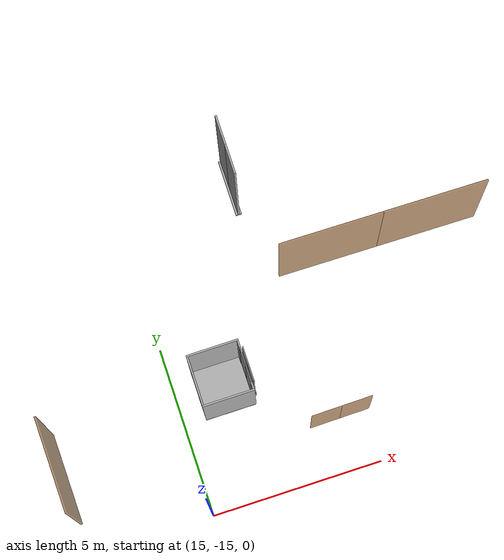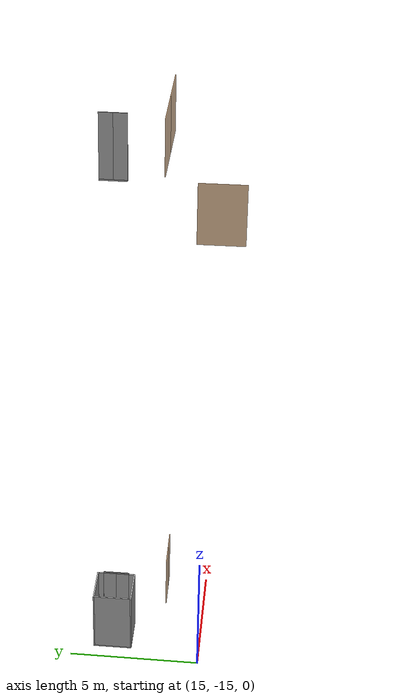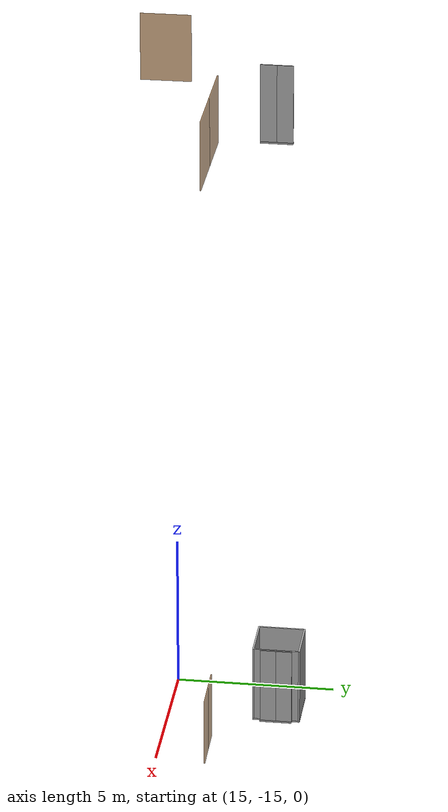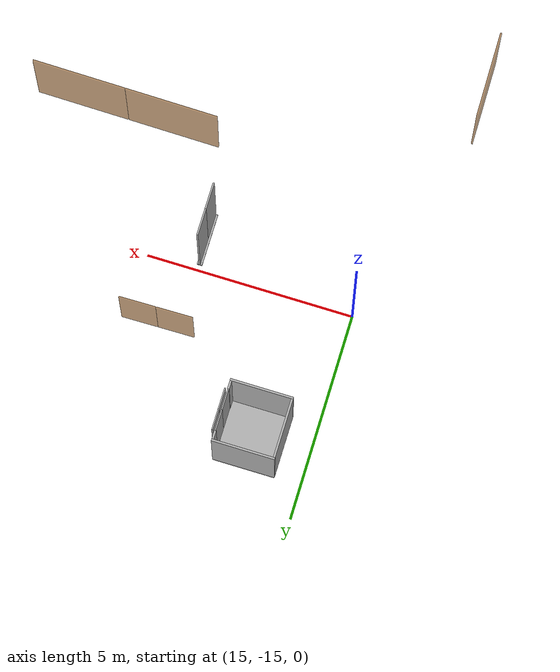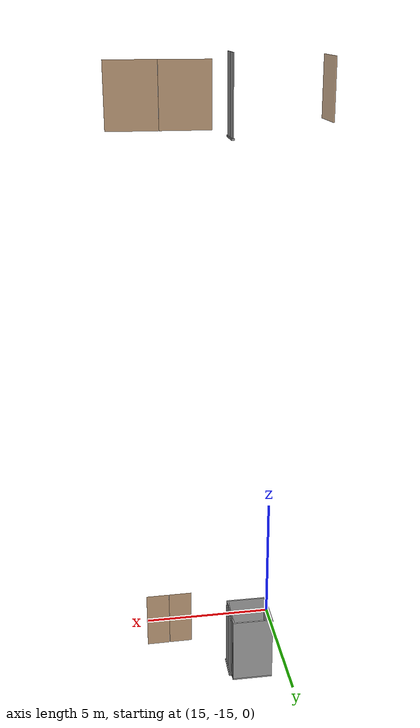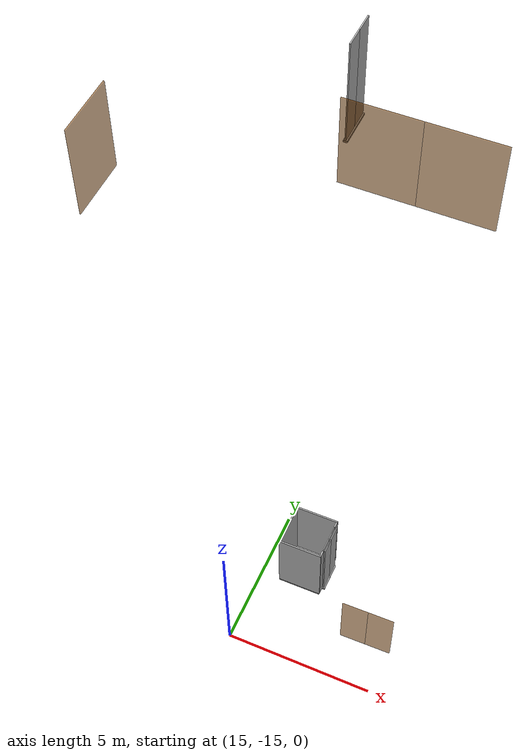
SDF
<sdf version="1.7">
 <world name="world">
  <include><uri>model://sun</uri></include>
  <model name="main_door">
   <pose>19.254640574649954 -13.34411363647952 20.0 0 0 3.129622883143067</pose>
   <link name="right">
    <pose>0.8771018575841038 0 1.11 0 0 0</pose>
    <visual name="right_visual">
     <geometry><box><size>1.7442037151682075 0.03 2.2</size></box></geometry>
     <material><ambient>0.5 0.25 0 0.6</ambient><diffuse>0.5 0.25 0 0.6</diffuse></material>
    </visual>
    <collision name="right_collision">
     <geometry><box><size>1.7442037151682075 0.03 2.2</size></box></geometry>
     <surface><contact><collide_bitmask>0x02</collide_bitmask></contact></surface>
    </collision>
    <inertial>
     <mass>50.0</mass>
     <inertia><ixx>20.17041666666667</ixx><iyy>32.84269416669408</iyy><izz>12.679777500027408</izz></inertia>
    </inertial>
   </link>
   <joint name="right_joint" type="prismatic">
    <parent>world</parent>
    <child>right</child>
    <axis>
     <xyz>1 0 0</xyz>
     <limit><lower>0.0</lower><upper>1.7542037151682075</upper><effort>500.0</effort></limit>
    </axis>
   </joint>
   <link name="left">
    <pose>-0.8771018575841038 0 1.11 0 0 0</pose>
    <visual name="left_visual">
     <geometry><box><size>1.7442037151682075 0.03 2.2</size></box></geometry>
     <material><ambient>0.5 0.25 0 0.6</ambient><diffuse>0.5 0.25 0 0.6</diffuse></material>
    </visual>
    <collision name="left_collision">
     <geometry><box><size>1.7442037151682075 0.03 2.2</size></box></geometry>
     <surface><contact><collide_bitmask>0x02</collide_bitmask></contact></surface>
    </collision>
    <inertial>
     <mass>50.0</mass>
     <inertia><ixx>20.17041666666667</ixx><iyy>32.84269416669408</iyy><izz>12.679777500027408</izz></inertia>
    </inertial>
   </link>
   <joint name="left_joint" type="prismatic">
    <parent>world</parent>
    <child>left</child>
    <axis>
     <xyz>1 0 0</xyz>
     <limit><lower>-1.7542037151682075</lower><upper>0.0</upper><effort>500.0</effort></limit>
    </axis>
   </joint>
   <plugin name="door" filename="libdoor.so">
    <v_max_door>0.2</v_max_door>
    <a_max_door>0.2</a_max_door>
    <a_nom_door>0.08</a_nom_door>
    <dx_min_door>0.001</dx_min_door>
    <f_max_door>100.0</f_max_door>
    <door name="main_door" type="DoubleSlidingDoor" left_joint_name="left_joint" right_joint_name="right_joint"/>
   </plugin>
  </model>
  <model name="cafe_door_2">
   <pose>13.044028382412879 -15.5315011431615 20.0 0 0 1.5833281481840809</pose>
   <link name="right">
    <pose>0 0 1.11 0 0 0</pose>
    <visual name="right_visual">
     <geometry><box><size>1.5849505722999089 0.03 2.2</size></box></geometry>
     <material><ambient>0.5 0.25 0 0.6</ambient><diffuse>0.5 0.25 0 0.6</diffuse></material>
    </visual>
    <collision name="right_collision">
     <geometry><box><size>1.5849505722999089 0.03 2.2</size></box></geometry>
     <surface><contact><collide_bitmask>0x02</collide_bitmask></contact></surface>
    </collision>
    <inertial>
     <mass>50.0</mass>
     <inertia><ixx>20.17041666666667</ixx><iyy>30.63361798597421</iyy><izz>10.470701319307537</izz></inertia>
    </inertial>
   </link>
   <joint name="right_joint" type="prismatic">
    <parent>world</parent>
    <child>right</child>
    <axis>
     <xyz>1 0 0</xyz>
     <limit><lower>0.0</lower><upper>1.5949505722999089</upper><effort>500.0</effort></limit>
    </axis>
   </joint>
   <plugin name="door" filename="libdoor.so">
    <v_max_door>0.2</v_max_door>
    <a_max_door>0.2</a_max_door>
    <a_nom_door>0.08</a_nom_door>
    <dx_min_door>0.001</dx_min_door>
    <f_max_door>100.0</f_max_door>
    <door name="cafe_door_2" type="SlidingDoor" left_joint_name="empty_joint" right_joint_name="right_joint"/>
   </plugin>
  </model>
  <model name="main_entrance_door_lvl9">
   <pose>19.268236557665332 -13.456990091303892 0.0 0 0 -3.1293838657320174</pose>
   <link name="right">
    <pose>0.44244180624485 0 1.11 0 0 0</pose>
    <visual name="right_visual">
     <geometry><box><size>0.8748836124897 0.03 2.2</size></box></geometry>
     <material><ambient>0.5 0.25 0 0.6</ambient><diffuse>0.5 0.25 0 0.6</diffuse></material>
    </visual>
    <collision name="right_collision">
     <geometry><box><size>0.8748836124897 0.03 2.2</size></box></geometry>
     <surface><contact><collide_bitmask>0x02</collide_bitmask></contact></surface>
    </collision>
    <inertial>
     <mass>50.0</mass>
     <inertia><ixx>20.17041666666667</ixx><iyy>23.355922230845955</iyy><izz>3.193005564179282</izz></inertia>
    </inertial>
   </link>
   <joint name="right_joint" type="prismatic">
    <parent>world</parent>
    <child>right</child>
    <axis>
     <xyz>1 0 0</xyz>
     <limit><lower>0.0</lower><upper>0.8848836124897</upper><effort>500.0</effort></limit>
    </axis>
   </joint>
   <link name="left">
    <pose>-0.44244180624485 0 1.11 0 0 0</pose>
    <visual name="left_visual">
     <geometry><box><size>0.8748836124897 0.03 2.2</size></box></geometry>
     <material><ambient>0.5 0.25 0 0.6</ambient><diffuse>0.5 0.25 0 0.6</diffuse></material>
    </visual>
    <collision name="left_collision">
     <geometry><box><size>0.8748836124897 0.03 2.2</size></box></geometry>
     <surface><contact><collide_bitmask>0x02</collide_bitmask></contact></surface>
    </collision>
    <inertial>
     <mass>50.0</mass>
     <inertia><ixx>20.17041666666667</ixx><iyy>23.355922230845955</iyy><izz>3.193005564179282</izz></inertia>
    </inertial>
   </link>
   <joint name="left_joint" type="prismatic">
    <parent>world</parent>
    <child>left</child>
    <axis>
     <xyz>1 0 0</xyz>
     <limit><lower>-0.8848836124897</lower><upper>0.0</upper><effort>500.0</effort></limit>
    </axis>
   </joint>
   <plugin name="door" filename="libdoor.so">
    <v_max_door>0.2</v_max_door>
    <a_max_door>0.2</a_max_door>
    <a_nom_door>0.08</a_nom_door>
    <dx_min_door>0.001</dx_min_door>
    <f_max_door>100.0</f_max_door>
    <door name="main_entrance_door_lvl9" type="DoubleSlidingDoor" left_joint_name="left_joint" right_joint_name="right_joint"/>
   </plugin>
  </model>
  <model name="ShaftDoor_Lift1_L10_door">
   <pose>17.18706209363312 -11.580492547898384 20.0 0 0 1.57</pose>
   <link name="right_door">
    <pose>0.25 0 1.25 0 0 0</pose>
    <visual name="right_door_visual">
     <geometry><box><size>0.5 0.03 2.5</size></box></geometry>
     <material>
      <ambient>0.5 0.5 0.5 1</ambient>
      <diffuse>0.7 0.7 0.7 1</diffuse>
      <specular>0.6 0.6 0.6 1</specular>
      <emissive>0.1 0.1 0.1 1</emissive>
     </material>
    </visual>
    <collision name="right_door_collision">
     <geometry><box><size>0.5 0.03 2.5</size></box></geometry>
     <surface><contact><collide_bitmask>0x02</collide_bitmask></contact></surface>
    </collision>
   </link>
   <joint name="right_joint" type="prismatic">
    <parent>world</parent>
    <child>right_door</child>
    <axis><xyz>1 0 0</xyz><limit><lower>0</lower><upper>0.5</upper></limit></axis>
   </joint>
   <link name="left_door">
    <pose>-0.25 0 1.25 0 0 0</pose>
    <visual name="left_door_visual">
     <geometry><box><size>0.5 0.03 2.5</size></box></geometry>
     <material>
      <ambient>0.5 0.5 0.5 1</ambient>
      <diffuse>0.7 0.7 0.7 1</diffuse>
      <specular>0.6 0.6 0.6 1</specular>
      <emissive>0.1 0.1 0.1 1</emissive>
     </material>
    </visual>
    <collision name="left_door_collision">
     <geometry><box><size>0.5 0.03 2.5</size></box></geometry>
     <surface><contact><collide_bitmask>0x02</collide_bitmask></contact></surface>
    </collision>
   </link>
   <joint name="left_joint" type="prismatic">
    <parent>world</parent>
    <child>left_door</child>
    <axis><xyz>1 0 0</xyz><limit><lower>-0.5</lower><upper>0</upper></limit></axis>
   </joint>
   <link name="ramp">
    <pose>0 0 -0.025 0 0 0</pose>
    <visual name="ramp_visual">
     <geometry><box><size>1.0 0.1 0.05</size></box></geometry>
     <material>
      <ambient>0.5 0.5 0.5 1</ambient>
      <diffuse>0.7 0.7 0.7 1</diffuse>
      <specular>0.6 0.6 0.6 1</specular>
      <emissive>0.1 0.1 0.1 1</emissive>
     </material>
    </visual>
    <collision name="ramp_collision">
     <geometry><box><size>1.0 0.1 0.05</size></box></geometry>
     <surface><contact><collide_bitmask>0x02</collide_bitmask></contact></surface>
    </collision>
   </link>
   <joint name="ramp_joint" type="fixed"><parent>world</parent><child>ramp</child></joint>
   <plugin name="door" filename="libdoor.so">
    <v_max_door>0.3</v_max_door>
    <a_max_door>0.2</a_max_door>
    <a_nom_door>0.1</a_nom_door>
    <dx_min_door>0.0001</dx_min_door>
    <f_max_door>35.0</f_max_door>
    <door left_joint_name="left_joint" name="ShaftDoor_Lift1_L10_door" right_joint_name="right_joint" type="DoubleSlidingDoor"/>
   </plugin>
  </model>
  <model name="ShaftDoor_Lift1_L9_door">
   <pose>17.18706209363312 -11.580492547898384 0.0 0 0 1.57</pose>
   <link name="right_door">
    <pose>0.25 0 1.25 0 0 0</pose>
    <visual name="right_door_visual">
     <geometry><box><size>0.5 0.03 2.5</size></box></geometry>
     <material>
      <ambient>0.5 0.5 0.5 1</ambient>
      <diffuse>0.7 0.7 0.7 1</diffuse>
      <specular>0.6 0.6 0.6 1</specular>
      <emissive>0.1 0.1 0.1 1</emissive>
     </material>
    </visual>
    <collision name="right_door_collision">
     <geometry><box><size>0.5 0.03 2.5</size></box></geometry>
     <surface><contact><collide_bitmask>0x02</collide_bitmask></contact></surface>
    </collision>
   </link>
   <joint name="right_joint" type="prismatic">
    <parent>world</parent>
    <child>right_door</child>
    <axis><xyz>1 0 0</xyz><limit><lower>0</lower><upper>0.5</upper></limit></axis>
   </joint>
   <link name="left_door">
    <pose>-0.25 0 1.25 0 0 0</pose>
    <visual name="left_door_visual">
     <geometry><box><size>0.5 0.03 2.5</size></box></geometry>
     <material>
      <ambient>0.5 0.5 0.5 1</ambient>
      <diffuse>0.7 0.7 0.7 1</diffuse>
      <specular>0.6 0.6 0.6 1</specular>
      <emissive>0.1 0.1 0.1 1</emissive>
     </material>
    </visual>
    <collision name="left_door_collision">
     <geometry><box><size>0.5 0.03 2.5</size></box></geometry>
     <surface><contact><collide_bitmask>0x02</collide_bitmask></contact></surface>
    </collision>
   </link>
   <joint name="left_joint" type="prismatic">
    <parent>world</parent>
    <child>left_door</child>
    <axis><xyz>1 0 0</xyz><limit><lower>-0.5</lower><upper>0</upper></limit></axis>
   </joint>
   <link name="ramp">
    <pose>0 0 -0.025 0 0 0</pose>
    <visual name="ramp_visual">
     <geometry><box><size>1.0 0.1 0.05</size></box></geometry>
     <material>
      <ambient>0.5 0.5 0.5 1</ambient>
      <diffuse>0.7 0.7 0.7 1</diffuse>
      <specular>0.6 0.6 0.6 1</specular>
      <emissive>0.1 0.1 0.1 1</emissive>
     </material>
    </visual>
    <collision name="ramp_collision">
     <geometry><box><size>1.0 0.1 0.05</size></box></geometry>
     <surface><contact><collide_bitmask>0x02</collide_bitmask></contact></surface>
    </collision>
   </link>
   <joint name="ramp_joint" type="fixed"><parent>world</parent><child>ramp</child></joint>
   <plugin name="door" filename="libdoor.so">
    <v_max_door>0.3</v_max_door>
    <a_max_door>0.2</a_max_door>
    <a_nom_door>0.1</a_nom_door>
    <dx_min_door>0.0001</dx_min_door>
    <f_max_door>35.0</f_max_door>
    <door left_joint_name="left_joint" name="ShaftDoor_Lift1_L9_door" right_joint_name="right_joint" type="DoubleSlidingDoor"/>
   </plugin>
  </model>
  <model name="Lift1">
   <link name="platform">
    <inertial><mass>1200</mass><inertia><ixx>225.25</ixx><iyy>225.25</iyy><izz>450.0</izz></inertia></inertial>
    <visual name="floor">
     <pose>0 0 -0.025 0 0 0</pose>
     <geometry><box><size>1.5 1.5 0.05</size></box></geometry>
     <material>
      <ambient>0.5 0.5 0.5 1</ambient>
      <diffuse>0.7 0.7 0.7 1</diffuse>
      <specular>0.6 0.6 0.6 1</specular>
      <emissive>0.1 0.1 0.1 1</emissive>
     </material>
    </visual>
    <collision name="floor">
     <pose>0 0 -0.025 0 0 0</pose>
     <geometry><box><size>1.5 1.5 0.05</size></box></geometry>
     <surface><contact><collide_bitmask>0x01</collide_bitmask></contact></surface>
    </collision>
    <visual name="frontwall1">
     <pose>0.0 0.725 1.25 0 0 0</pose>
     <geometry><box><size>1.5 0.05 2.5</size></box></geometry>
     <material>
      <ambient>0.5 0.5 0.5 1</ambient>
      <diffuse>0.7 0.7 0.7 1</diffuse>
      <specular>0.6 0.6 0.6 1</specular>
      <emissive>0.1 0.1 0.1 1</emissive>
     </material>
    </visual>
    <collision name="frontwall1">
     <pose>0.0 0.725 1.25 0 0 0</pose>
     <geometry><box><size>1.5 0.05 2.5</size></box></geometry>
     <surface><contact><collide_bitmask>0x01</collide_bitmask></contact></surface>
    </collision>
    <visual name="backwall1">
     <pose>0.0 -0.725 1.25 0 0 0</pose>
     <geometry><box><size>1.5 0.05 2.5</size></box></geometry>
     <material>
      <ambient>0.5 0.5 0.5 1</ambient>
      <diffuse>0.7 0.7 0.7 1</diffuse>
      <specular>0.6 0.6 0.6 1</specular>
      <emissive>0.1 0.1 0.1 1</emissive>
     </material>
    </visual>
    <collision name="backwall1">
     <pose>0.0 -0.725 1.25 0 0 0</pose>
     <geometry><box><size>1.5 0.05 2.5</size></box></geometry>
     <surface><contact><collide_bitmask>0x01</collide_bitmask></contact></surface>
    </collision>
    <visual name="leftwall1">
     <pose>-0.725 0.0 1.25 0 0 1.5707963267948966</pose>
     <geometry><box><size>1.4 0.05 2.5</size></box></geometry>
     <material>
      <ambient>0.5 0.5 0.5 1</ambient>
      <diffuse>0.7 0.7 0.7 1</diffuse>
      <specular>0.6 0.6 0.6 1</specular>
      <emissive>0.1 0.1 0.1 1</emissive>
     </material>
    </visual>
    <collision name="leftwall1">
     <pose>-0.725 0.0 1.25 0 0 1.5707963267948966</pose>
     <geometry><box><size>1.4 0.05 2.5</size></box></geometry>
     <surface><contact><collide_bitmask>0x01</collide_bitmask></contact></surface>
    </collision>
    <visual name="rightwall1">
     <pose>0.725 -0.6 1.25 0 0 1.5707963267948966</pose>
     <geometry><box><size>0.19999999999999996 0.05 2.5</size></box></geometry>
     <material>
      <ambient>0.5 0.5 0.5 1</ambient>
      <diffuse>0.7 0.7 0.7 1</diffuse>
      <specular>0.6 0.6 0.6 1</specular>
      <emissive>0.1 0.1 0.1 1</emissive>
     </material>
    </visual>
    <collision name="rightwall1">
     <pose>0.725 -0.6 1.25 0 0 1.5707963267948966</pose>
     <geometry><box><size>0.19999999999999996 0.05 2.5</size></box></geometry>
     <surface><contact><collide_bitmask>0x01</collide_bitmask></contact></surface>
    </collision>
    <visual name="rightwall2">
     <pose>0.725 0.6 1.25 0 0 1.5707963267948966</pose>
     <geometry><box><size>0.19999999999999996 0.05 2.5</size></box></geometry>
     <material>
      <ambient>0.5 0.5 0.5 1</ambient>
      <diffuse>0.7 0.7 0.7 1</diffuse>
      <specular>0.6 0.6 0.6 1</specular>
      <emissive>0.1 0.1 0.1 1</emissive>
     </material>
    </visual>
    <collision name="rightwall2">
     <pose>0.725 0.6 1.25 0 0 1.5707963267948966</pose>
     <geometry><box><size>0.19999999999999996 0.05 2.5</size></box></geometry>
     <surface><contact><collide_bitmask>0x01</collide_bitmask></contact></surface>
    </collision>
   </link>
   <joint name="cabin_joint" type="prismatic">
    <parent>world</parent>
    <child>platform</child>
    <axis><xyz>0 0 1</xyz></axis>
   </joint>
   <model name="CabinDoor_Lift1_door">
    <pose>0.725 0.0 0 0 0 1.57</pose>
    <link name="right_door">
     <pose>0.25 0 1.25 0 0 0</pose>
     <visual name="right_door_visual">
      <geometry><box><size>0.5 0.03 2.5</size></box></geometry>
      <material>
       <ambient>0.5 0.5 0.5 1</ambient>
       <diffuse>0.7 0.7 0.7 1</diffuse>
       <specular>0.6 0.6 0.6 1</specular>
       <emissive>0.1 0.1 0.1 1</emissive>
      </material>
     </visual>
     <collision name="right_door_collision">
      <geometry><box><size>0.5 0.03 2.5</size></box></geometry>
      <surface><contact><collide_bitmask>0x02</collide_bitmask></contact></surface>
     </collision>
    </link>
    <joint name="right_joint" type="prismatic">
     <parent>platform</parent>
     <child>right_door</child>
     <axis><xyz>1 0 0</xyz><limit><lower>0</lower><upper>0.5</upper></limit></axis>
    </joint>
    <link name="left_door">
     <pose>-0.25 0 1.25 0 0 0</pose>
     <visual name="left_door_visual">
      <geometry><box><size>0.5 0.03 2.5</size></box></geometry>
      <material>
       <ambient>0.5 0.5 0.5 1</ambient>
       <diffuse>0.7 0.7 0.7 1</diffuse>
       <specular>0.6 0.6 0.6 1</specular>
       <emissive>0.1 0.1 0.1 1</emissive>
      </material>
     </visual>
     <collision name="left_door_collision">
      <geometry><box><size>0.5 0.03 2.5</size></box></geometry>
      <surface><contact><collide_bitmask>0x02</collide_bitmask></contact></surface>
     </collision>
    </link>
    <joint name="left_joint" type="prismatic">
     <parent>platform</parent>
     <child>left_door</child>
     <axis><xyz>1 0 0</xyz><limit><lower>-0.5</lower><upper>0</upper></limit></axis>
    </joint>
    <plugin name="door" filename="libdoor.so">
     <v_max_door>0.3</v_max_door>
     <a_max_door>0.2</a_max_door>
     <a_nom_door>0.1</a_nom_door>
     <dx_min_door>0.0001</dx_min_door>
     <f_max_door>35.0</f_max_door>
     <door left_joint_name="left_joint" name="CabinDoor_Lift1_door" right_joint_name="right_joint" type="DoubleSlidingDoor"/>
    </plugin>
   </model>
   <plugin name="lift" filename="liblift.so">
    <lift_name>Lift1</lift_name>
    <floor name="L10" elevation="20.0">
     <door_pair cabin_door="CabinDoor_Lift1_door" shaft_door="ShaftDoor_Lift1_L10_door"/>
    </floor>
    <floor name="L9" elevation="0.0">
     <door_pair cabin_door="CabinDoor_Lift1_door" shaft_door="ShaftDoor_Lift1_L9_door"/>
    </floor>
    <initial_floor>L9</initial_floor>
    <v_max_cabin>2.0</v_max_cabin>
    <a_max_cabin>1.2</a_max_cabin>
    <a_nom_cabin>1.0</a_nom_cabin>
    <dx_min_cabin>0.001</dx_min_cabin>
    <f_max_cabin>25323.0</f_max_cabin>
    <cabin_joint_name>cabin_joint</cabin_joint_name>
   </plugin>
   <pose>16.38706209363312 -11.580492547898384 0 0 0 0.0</pose>
  </model>
 </world>
</sdf>
